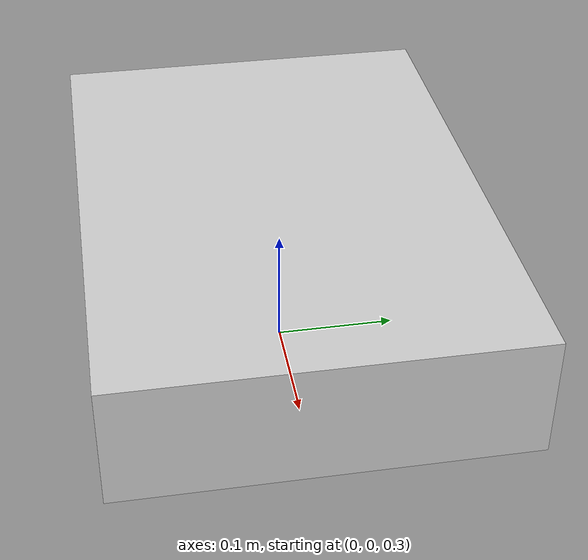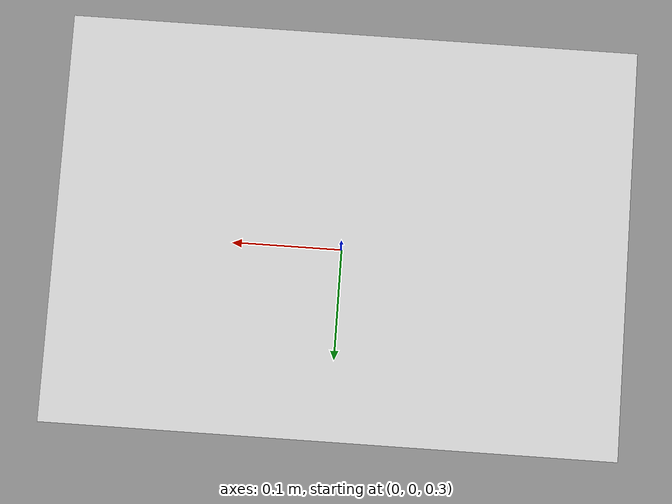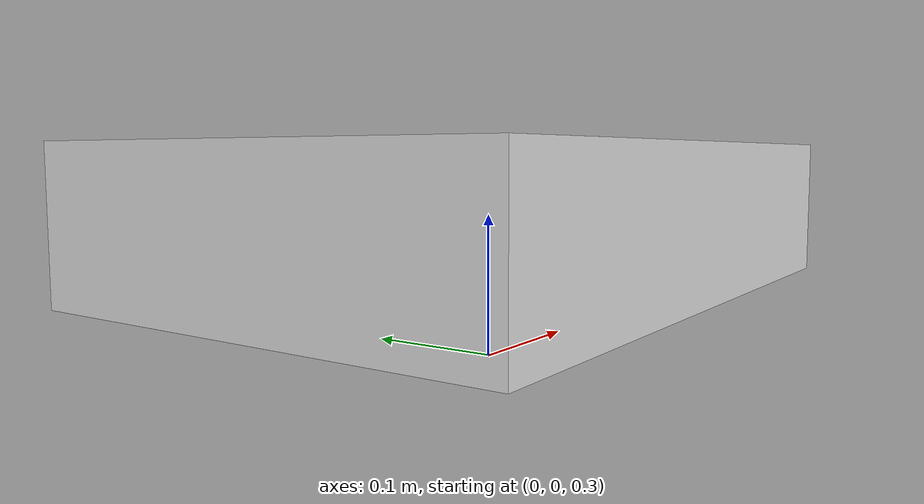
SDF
<?xml version='1.0'?>
<sdf version='1.7'>
  <model name='boxboxbox'>
   	<static>true</static>
    <allow_auto_disable>true</allow_auto_disable>
    <plugin filename="gz-sim-label-system" name="gz::sim::systems::Label">
        <label>3</label>
    </plugin>
    <link name='link_0'>
			<gravity>0</gravity>
      <inertial>
        <pose>0 0 0.02 0 0 0</pose>
        <mass>0.025</mass>
        <inertia>
          <ixx>2.5e-5</ixx>
          <ixy>0</ixy>
          <ixz>0</ixz>
          <iyy>2.5e-5</iyy>
          <iyz>0</iyz>
          <izz>8e-6</izz>
        </inertia>
      </inertial>
      <pose>0 0 0.40 0 0 0</pose>
      <visual name='visual'>
        <pose>0 0 0 0 -0 0</pose>
        <geometry>
          <box>
            <size>0.450 0.322 0.100</size>
          </box>
        </geometry>
        <material>
          <ambient>0.8 0.8 0.8 1</ambient>
          <diffuse>0.8 0.8 0.8 1</diffuse>
          <specular>0.1 0.1 0.1 1</specular>
          <emissive>0 0 0 1</emissive>
        </material>
        <transparency>0</transparency>
        <cast_shadows>1</cast_shadows>
      </visual>

      <collision name='collision'>
        <laser_retro>1.0</laser_retro>
        <max_contacts>5 </max_contacts>
        <pose>0 0 0 0 0 0</pose>
        <geometry>
          <box>
            <size>0.450 0.322 0.100</size>
          </box>
        </geometry>
      </collision>
    </link>
    <pose>0 0 0 0 0 0</pose>

    <allow_auto_disable>1</allow_auto_disable>
  </model>
</sdf>
